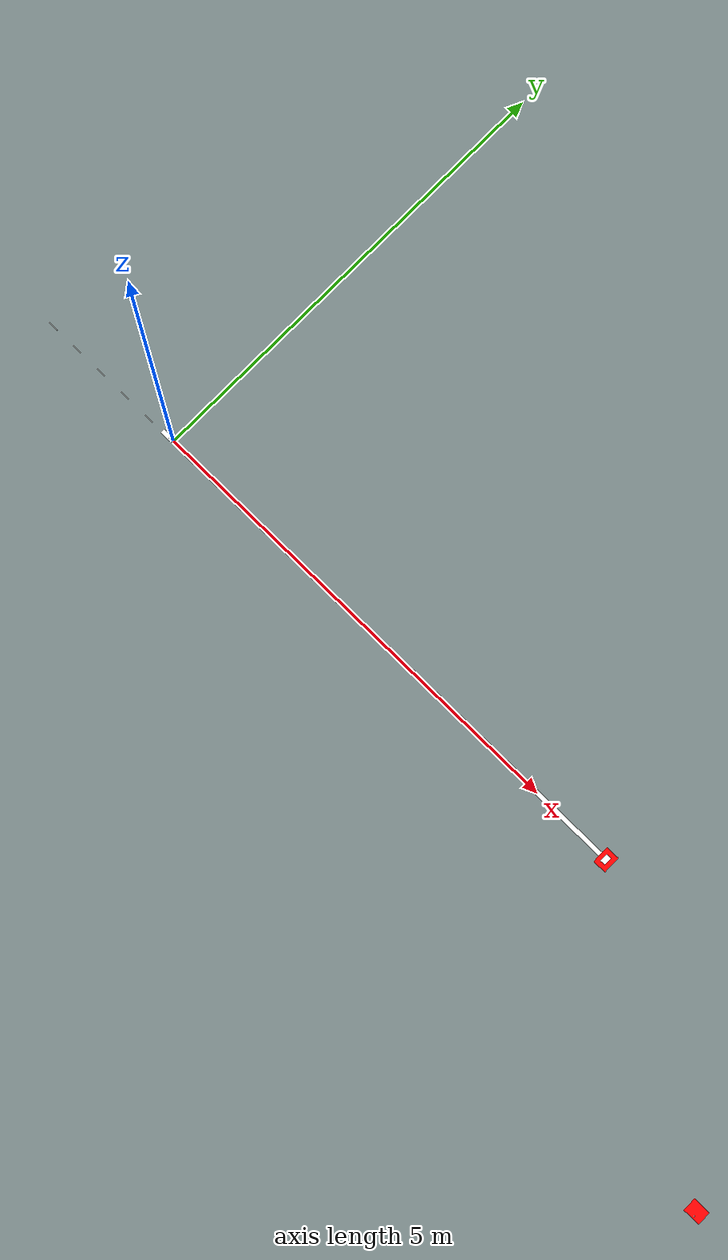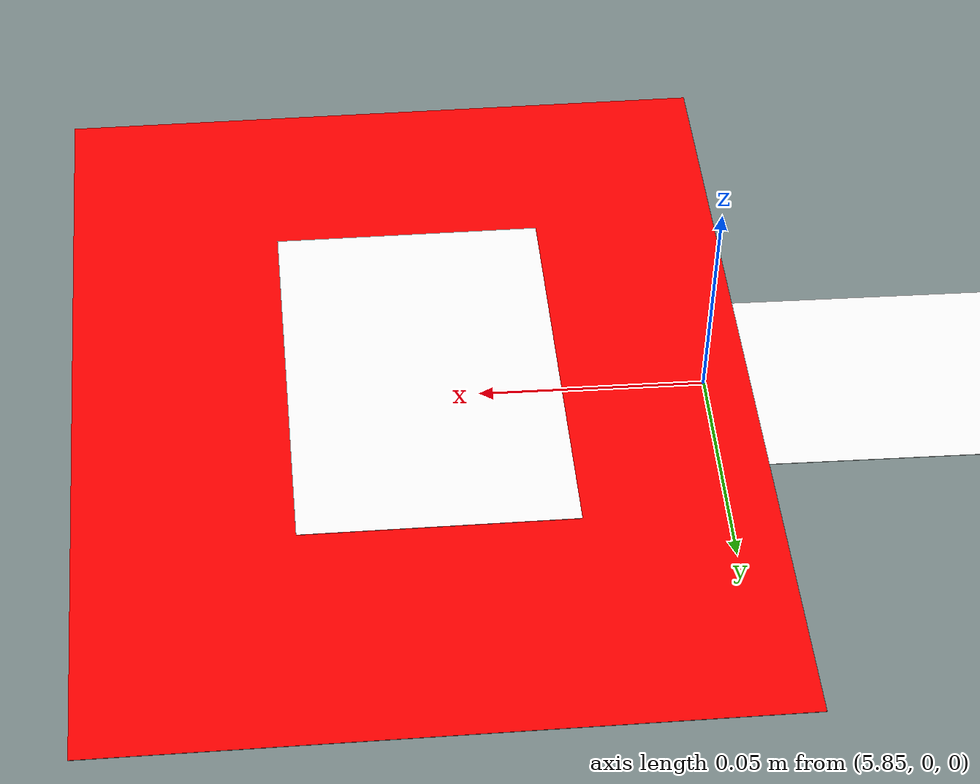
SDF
<sdf version="1.7">
 <world name="default">
  <light name="sun" type="directional">
   <pose>0 0 10 0 -0 0</pose>
   <diffuse>0.8 0.8 0.8 1</diffuse>
   <specular>0.2 0.2 0.2 1</specular>
   <attenuation>
    <range>1000</range>
    <constant>0.9</constant>
    <linear>0.01</linear>
    <quadratic>0.001</quadratic>
   </attenuation>
   <direction>-0.5 0.1 -0.9</direction>
   <spot><inner_angle>0</inner_angle><outer_angle>0</outer_angle><falloff>0</falloff></spot>
  </light>
  <scene><shadows>0</shadows><ambient>0.4 0.4 0.4 1</ambient><background>0.7 0.7 0.7 1</background></scene>
  <physics type="ode">
   <real_time_update_rate>1000</real_time_update_rate>
   <max_step_size>0.001</max_step_size>
   <real_time_factor>1</real_time_factor>
   <ode>
    <solver>
     <type>quick</type>
     <iters>150</iters>
     <precon_iters>0</precon_iters>
     <sor>1.4</sor>
     <use_dynamic_moi_rescaling>1</use_dynamic_moi_rescaling>
    </solver>
    <constraints>
     <cfm>1e-05</cfm>
     <erp>0.2</erp>
     <contact_max_correcting_vel>2000</contact_max_correcting_vel>
     <contact_surface_layer>0.01</contact_surface_layer>
    </constraints>
   </ode>
  </physics>
  <gravity>0 0 -9.8</gravity>
  <magnetic_field>6e-06 2.3e-05 -4.2e-05</magnetic_field>
  <atmosphere type="adiabatic"/>
  <audio><device>default</device></audio>
  <spherical_coordinates>
   <surface_model>EARTH_WGS84</surface_model>
   <latitude_deg>0</latitude_deg>
   <longitude_deg>0</longitude_deg>
   <elevation>0</elevation>
   <heading_deg>0</heading_deg>
  </spherical_coordinates>
  <model name="white_line_track">
   <static>1</static>
   <link name="line_link">
    <pose>0 0 0.001 0 -0 0</pose>
    <visual name="line_visual">
     <cast_shadows>0</cast_shadows>
     <geometry><box><size>6 0.002 0.0001</size></box></geometry>
     <material>
      <ambient>1 1 1 1</ambient>
      <diffuse>1 1 1 1</diffuse>
      <specular>0.1 0.1 0.1 1</specular>
      <emissive>0 0 0 0</emissive>
     </material>
    </visual>
   </link>
   <pose>1.01364 -0.007598 0 0 -0 0</pose>
  </model>
  <model name="white_line_track_0_clone_0">
   <link name="line_link">
    <pose>3.15585 -2.04767 0.001 0 -0 0</pose>
    <inertial>
     <mass>1</mass>
     <inertia><ixx>1</ixx><ixy>0</ixy><ixz>0</ixz><iyy>1</iyy><iyz>0</iyz><izz>1</izz></inertia>
    </inertial>
    <visual name="line_visual">
     <cast_shadows>0</cast_shadows>
     <geometry><box><size>0.19 0.15 0.0001</size></box></geometry>
     <material>
      <ambient>1 0 0 1</ambient>
      <diffuse>1 0 0 1</diffuse>
      <specular>0.1 0.1 0.1 1</specular>
      <emissive>0 0 0 1</emissive>
      <shader type="pixel"><normal_map>__default__</normal_map></shader>
      <script><name>ModelPreview_1::line_link::line_visual_MATERIAL_</name><uri>__default__</uri></script>
     </material>
    </visual>
   </link>
   <link name="line_link_clone">
    <pose>3.14572 -2.05276 0.001 0 -0 1.58384</pose>
    <inertial>
     <mass>1</mass>
     <inertia><ixx>1</ixx><ixy>0</ixy><ixz>0</ixz><iyy>1</iyy><iyz>0</iyz><izz>1</izz></inertia>
    </inertial>
    <visual name="line_visual">
     <cast_shadows>0</cast_shadows>
     <geometry><box><size>0.09 0.06 0.0001</size></box></geometry>
     <material>
      <ambient>1 1 1 1</ambient>
      <diffuse>1 1 1 1</diffuse>
      <specular>0.1 0.1 0.1 1</specular>
      <emissive>0 0 0 1</emissive>
      <shader type="pixel"><normal_map>__default__</normal_map></shader>
      <script><name>ModelPreview_1::line_link::line_visual_MATERIAL_</name><uri>__default__</uri></script>
     </material>
    </visual>
   </link>
   <static>1</static>
   <pose>5.62802 0.252429 0 0 -0 0</pose>
  </model>
  <model name="dogru">
   <link name="line_link">
    <pose>3.16159 -2.05394 0.001001 0 -0 1.58621</pose>
    <inertial>
     <mass>1</mass>
     <inertia><ixx>1</ixx><ixy>0</ixy><ixz>0</ixz><iyy>1</iyy><iyz>0</iyz><izz>1</izz></inertia>
    </inertial>
    <visual name="line_visual">
     <cast_shadows>0</cast_shadows>
     <geometry><box><size>0.19 0.15 0.0001</size></box></geometry>
     <material>
      <ambient>1 0 0 1</ambient>
      <diffuse>1 0 0 1</diffuse>
      <specular>0.1 0.1 0.1 1</specular>
      <emissive>0 0 0 1</emissive>
      <shader type="pixel"><normal_map>__default__</normal_map></shader>
      <script><name>ModelPreview_1::line_link::line_visual_MATERIAL_</name><uri>__default__</uri></script>
     </material>
    </visual>
   </link>
   <link name="line_link_clone">
    <pose>3.15924 -2.05434 0.005826 0 -0 1.58384</pose>
    <inertial>
     <mass>1</mass>
     <inertia><ixx>1</ixx><ixy>0</ixy><ixz>0</ixz><iyy>1</iyy><iyz>0</iyz><izz>1</izz></inertia>
    </inertial>
    <visual name="line_visual">
     <cast_shadows>0</cast_shadows>
     <geometry><box><size>0.09 0.06 0.0001</size></box></geometry>
     <material>
      <ambient>1 1 1 1</ambient>
      <diffuse>1 1 1 1</diffuse>
      <specular>0.1 0.1 0.1 1</specular>
      <emissive>0 0 0 1</emissive>
      <shader type="pixel"><normal_map>__default__</normal_map></shader>
      <script><name>ModelPreview_1::line_link::line_visual_MATERIAL_</name><uri>__default__</uri></script>
     </material>
    </visual>
   </link>
   <static>1</static>
   <pose>2.75331 2.05274 0 0 -0 0</pose>
  </model>
  <model name="dosdogru">
   <link name="line_link">
    <pose>-0.056103 0.001412 0.001 0 -0 0</pose>
    <visual name="line_visual">
     <cast_shadows>0</cast_shadows>
     <geometry><box><size>6 0.05 0.0001</size></box></geometry>
     <material>
      <ambient>1 1 1 1</ambient>
      <diffuse>1 1 1 1</diffuse>
      <specular>0.1 0.1 0.1 1</specular>
      <emissive>0 0 0 0</emissive>
      <shader type="pixel"/>
      <script><name>ModelPreview_29::line_link::line_visual_MATERIAL_</name><uri>__default__</uri></script>
     </material>
    </visual>
   </link>
   <static>1</static>
   <pose>2.89667 -0.000435 0 0 -0 0</pose>
  </model>
 </world>
</sdf>
